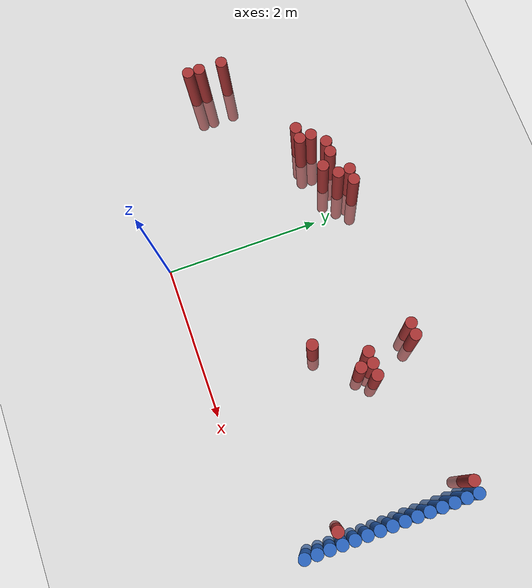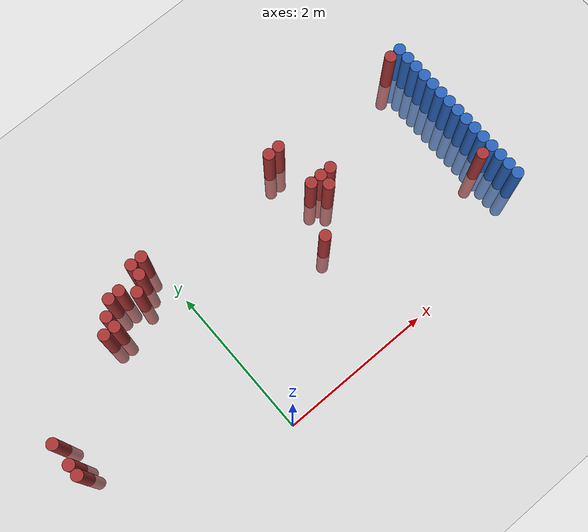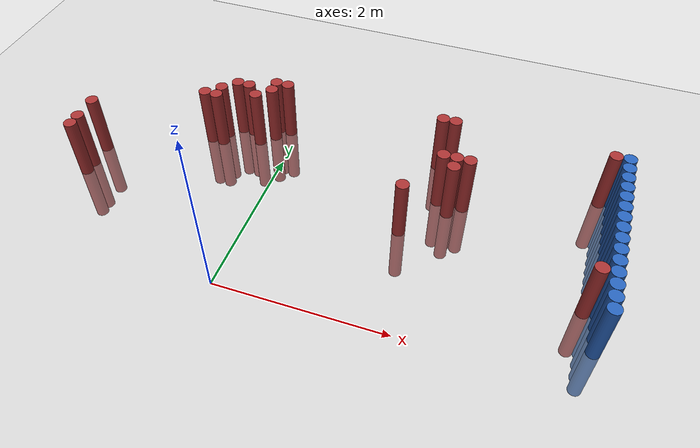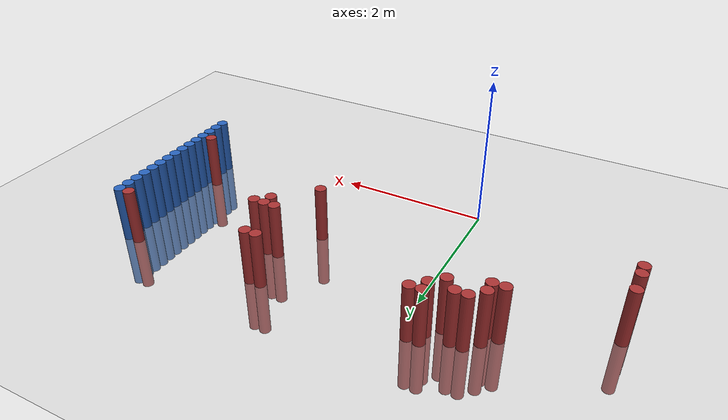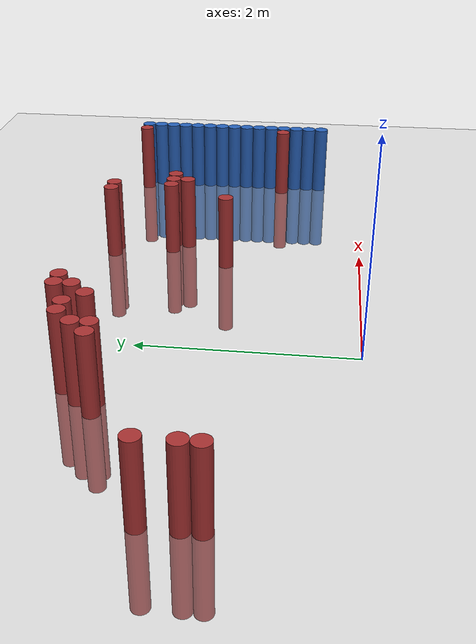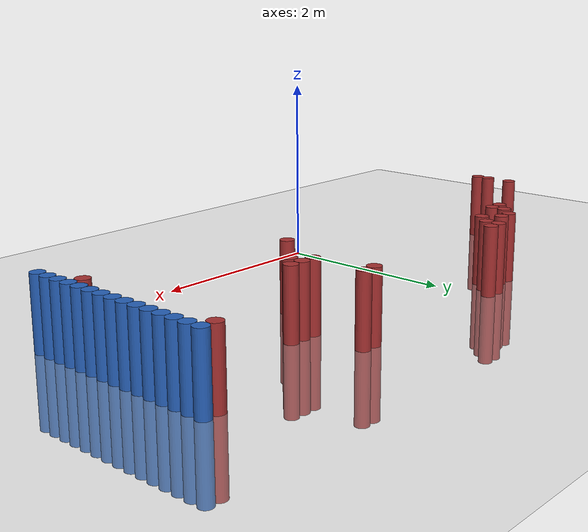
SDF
<sdf version="1.6">
 <world name="default">
  <model name="ground_plane">
   <static>1</static>
   <link name="link">
    <collision name="collision">
     <geometry><plane><normal>0 0 1</normal><size>100 100</size></plane></geometry>
     <surface><friction><ode><mu>100</mu><mu2>50</mu2></ode></friction></surface>
    </collision>
    <visual name="visual">
     <cast_shadows>0</cast_shadows>
     <geometry><plane><normal>0 0 1</normal><size>100 100</size></plane></geometry>
     <material>
      <script><uri>file://media/materials/scripts/gazebo.material</uri><name>Gazebo/Grey</name></script>
     </material>
    </visual>
   </link>
  </model>
  <model name="unit_cylinder_122">
   <static>1</static>
   <pose>3.925000 0.625000 0.000000 0.000000 0.000000 0.000000</pose>
   <link name="link">
    <inertial>
     <mass>1</mass>
     <inertia><ixx>0.145833</ixx><ixy>0</ixy><ixz>0</ixz><iyy>0.145833</iyy><iyz>0</iyz><izz>0.125</izz></inertia>
    </inertial>
    <collision name="collision">
     <geometry><cylinder><radius>0.075000</radius><length>1.5</length></cylinder></geometry>
    </collision>
    <visual name="visual">
     <geometry><cylinder><radius>0.075000</radius><length>1.5</length></cylinder></geometry>
     <material>
      <ambient>0.152000 0.379000 0.720000 1</ambient>
      <diffuse>0.152000 0.379000 0.720000 1</diffuse>
     </material>
     <material>
      <script><name>Gazebo/Grey</name><uri>file://media/materials/scripts/gazebo.material</uri></script>
     </material>
    </visual>
   </link>
  </model>
  <model name="unit_cylinder_124">
   <static>1</static>
   <pose>3.925000 0.775000 0.000000 0.000000 0.000000 0.000000</pose>
   <link name="link">
    <inertial>
     <mass>1</mass>
     <inertia><ixx>0.145833</ixx><ixy>0</ixy><ixz>0</ixz><iyy>0.145833</iyy><iyz>0</iyz><izz>0.125</izz></inertia>
    </inertial>
    <collision name="collision">
     <geometry><cylinder><radius>0.075000</radius><length>1.5</length></cylinder></geometry>
    </collision>
    <visual name="visual">
     <geometry><cylinder><radius>0.075000</radius><length>1.5</length></cylinder></geometry>
     <material>
      <ambient>0.152000 0.379000 0.720000 1</ambient>
      <diffuse>0.152000 0.379000 0.720000 1</diffuse>
     </material>
     <material>
      <script><name>Gazebo/Grey</name><uri>file://media/materials/scripts/gazebo.material</uri></script>
     </material>
    </visual>
   </link>
  </model>
  <model name="unit_cylinder_126">
   <static>1</static>
   <pose>3.925000 0.925000 0.000000 0.000000 0.000000 0.000000</pose>
   <link name="link">
    <inertial>
     <mass>1</mass>
     <inertia><ixx>0.145833</ixx><ixy>0</ixy><ixz>0</ixz><iyy>0.145833</iyy><iyz>0</iyz><izz>0.125</izz></inertia>
    </inertial>
    <collision name="collision">
     <geometry><cylinder><radius>0.075000</radius><length>1.5</length></cylinder></geometry>
    </collision>
    <visual name="visual">
     <geometry><cylinder><radius>0.075000</radius><length>1.5</length></cylinder></geometry>
     <material>
      <ambient>0.152000 0.379000 0.720000 1</ambient>
      <diffuse>0.152000 0.379000 0.720000 1</diffuse>
     </material>
     <material>
      <script><name>Gazebo/Grey</name><uri>file://media/materials/scripts/gazebo.material</uri></script>
     </material>
    </visual>
   </link>
  </model>
  <model name="unit_cylinder_128">
   <static>1</static>
   <pose>3.925000 1.075000 0.000000 0.000000 0.000000 0.000000</pose>
   <link name="link">
    <inertial>
     <mass>1</mass>
     <inertia><ixx>0.145833</ixx><ixy>0</ixy><ixz>0</ixz><iyy>0.145833</iyy><iyz>0</iyz><izz>0.125</izz></inertia>
    </inertial>
    <collision name="collision">
     <geometry><cylinder><radius>0.075000</radius><length>1.5</length></cylinder></geometry>
    </collision>
    <visual name="visual">
     <geometry><cylinder><radius>0.075000</radius><length>1.5</length></cylinder></geometry>
     <material>
      <ambient>0.152000 0.379000 0.720000 1</ambient>
      <diffuse>0.152000 0.379000 0.720000 1</diffuse>
     </material>
     <material>
      <script><name>Gazebo/Grey</name><uri>file://media/materials/scripts/gazebo.material</uri></script>
     </material>
    </visual>
   </link>
  </model>
  <model name="unit_cylinder_130">
   <static>1</static>
   <pose>3.925000 1.225000 0.000000 0.000000 0.000000 0.000000</pose>
   <link name="link">
    <inertial>
     <mass>1</mass>
     <inertia><ixx>0.145833</ixx><ixy>0</ixy><ixz>0</ixz><iyy>0.145833</iyy><iyz>0</iyz><izz>0.125</izz></inertia>
    </inertial>
    <collision name="collision">
     <geometry><cylinder><radius>0.075000</radius><length>1.5</length></cylinder></geometry>
    </collision>
    <visual name="visual">
     <geometry><cylinder><radius>0.075000</radius><length>1.5</length></cylinder></geometry>
     <material>
      <ambient>0.152000 0.379000 0.720000 1</ambient>
      <diffuse>0.152000 0.379000 0.720000 1</diffuse>
     </material>
     <material>
      <script><name>Gazebo/Grey</name><uri>file://media/materials/scripts/gazebo.material</uri></script>
     </material>
    </visual>
   </link>
  </model>
  <model name="unit_cylinder_132">
   <static>1</static>
   <pose>3.925000 1.375000 0.000000 0.000000 0.000000 0.000000</pose>
   <link name="link">
    <inertial>
     <mass>1</mass>
     <inertia><ixx>0.145833</ixx><ixy>0</ixy><ixz>0</ixz><iyy>0.145833</iyy><iyz>0</iyz><izz>0.125</izz></inertia>
    </inertial>
    <collision name="collision">
     <geometry><cylinder><radius>0.075000</radius><length>1.5</length></cylinder></geometry>
    </collision>
    <visual name="visual">
     <geometry><cylinder><radius>0.075000</radius><length>1.5</length></cylinder></geometry>
     <material>
      <ambient>0.152000 0.379000 0.720000 1</ambient>
      <diffuse>0.152000 0.379000 0.720000 1</diffuse>
     </material>
     <material>
      <script><name>Gazebo/Grey</name><uri>file://media/materials/scripts/gazebo.material</uri></script>
     </material>
    </visual>
   </link>
  </model>
  <model name="unit_cylinder_134">
   <static>1</static>
   <pose>3.925000 1.525000 0.000000 0.000000 0.000000 0.000000</pose>
   <link name="link">
    <inertial>
     <mass>1</mass>
     <inertia><ixx>0.145833</ixx><ixy>0</ixy><ixz>0</ixz><iyy>0.145833</iyy><iyz>0</iyz><izz>0.125</izz></inertia>
    </inertial>
    <collision name="collision">
     <geometry><cylinder><radius>0.075000</radius><length>1.5</length></cylinder></geometry>
    </collision>
    <visual name="visual">
     <geometry><cylinder><radius>0.075000</radius><length>1.5</length></cylinder></geometry>
     <material>
      <ambient>0.152000 0.379000 0.720000 1</ambient>
      <diffuse>0.152000 0.379000 0.720000 1</diffuse>
     </material>
     <material>
      <script><name>Gazebo/Grey</name><uri>file://media/materials/scripts/gazebo.material</uri></script>
     </material>
    </visual>
   </link>
  </model>
  <model name="unit_cylinder_136">
   <static>1</static>
   <pose>3.925000 1.675000 0.000000 0.000000 0.000000 0.000000</pose>
   <link name="link">
    <inertial>
     <mass>1</mass>
     <inertia><ixx>0.145833</ixx><ixy>0</ixy><ixz>0</ixz><iyy>0.145833</iyy><iyz>0</iyz><izz>0.125</izz></inertia>
    </inertial>
    <collision name="collision">
     <geometry><cylinder><radius>0.075000</radius><length>1.5</length></cylinder></geometry>
    </collision>
    <visual name="visual">
     <geometry><cylinder><radius>0.075000</radius><length>1.5</length></cylinder></geometry>
     <material>
      <ambient>0.152000 0.379000 0.720000 1</ambient>
      <diffuse>0.152000 0.379000 0.720000 1</diffuse>
     </material>
     <material>
      <script><name>Gazebo/Grey</name><uri>file://media/materials/scripts/gazebo.material</uri></script>
     </material>
    </visual>
   </link>
  </model>
  <model name="unit_cylinder_138">
   <static>1</static>
   <pose>3.925000 1.825000 0.000000 0.000000 0.000000 0.000000</pose>
   <link name="link">
    <inertial>
     <mass>1</mass>
     <inertia><ixx>0.145833</ixx><ixy>0</ixy><ixz>0</ixz><iyy>0.145833</iyy><iyz>0</iyz><izz>0.125</izz></inertia>
    </inertial>
    <collision name="collision">
     <geometry><cylinder><radius>0.075000</radius><length>1.5</length></cylinder></geometry>
    </collision>
    <visual name="visual">
     <geometry><cylinder><radius>0.075000</radius><length>1.5</length></cylinder></geometry>
     <material>
      <ambient>0.152000 0.379000 0.720000 1</ambient>
      <diffuse>0.152000 0.379000 0.720000 1</diffuse>
     </material>
     <material>
      <script><name>Gazebo/Grey</name><uri>file://media/materials/scripts/gazebo.material</uri></script>
     </material>
    </visual>
   </link>
  </model>
  <model name="unit_cylinder_140">
   <static>1</static>
   <pose>3.925000 1.975000 0.000000 0.000000 0.000000 0.000000</pose>
   <link name="link">
    <inertial>
     <mass>1</mass>
     <inertia><ixx>0.145833</ixx><ixy>0</ixy><ixz>0</ixz><iyy>0.145833</iyy><iyz>0</iyz><izz>0.125</izz></inertia>
    </inertial>
    <collision name="collision">
     <geometry><cylinder><radius>0.075000</radius><length>1.5</length></cylinder></geometry>
    </collision>
    <visual name="visual">
     <geometry><cylinder><radius>0.075000</radius><length>1.5</length></cylinder></geometry>
     <material>
      <ambient>0.152000 0.379000 0.720000 1</ambient>
      <diffuse>0.152000 0.379000 0.720000 1</diffuse>
     </material>
     <material>
      <script><name>Gazebo/Grey</name><uri>file://media/materials/scripts/gazebo.material</uri></script>
     </material>
    </visual>
   </link>
  </model>
  <model name="unit_cylinder_142">
   <static>1</static>
   <pose>3.925000 2.125000 0.000000 0.000000 0.000000 0.000000</pose>
   <link name="link">
    <inertial>
     <mass>1</mass>
     <inertia><ixx>0.145833</ixx><ixy>0</ixy><ixz>0</ixz><iyy>0.145833</iyy><iyz>0</iyz><izz>0.125</izz></inertia>
    </inertial>
    <collision name="collision">
     <geometry><cylinder><radius>0.075000</radius><length>1.5</length></cylinder></geometry>
    </collision>
    <visual name="visual">
     <geometry><cylinder><radius>0.075000</radius><length>1.5</length></cylinder></geometry>
     <material>
      <ambient>0.152000 0.379000 0.720000 1</ambient>
      <diffuse>0.152000 0.379000 0.720000 1</diffuse>
     </material>
     <material>
      <script><name>Gazebo/Grey</name><uri>file://media/materials/scripts/gazebo.material</uri></script>
     </material>
    </visual>
   </link>
  </model>
  <model name="unit_cylinder_144">
   <static>1</static>
   <pose>3.925000 2.275000 0.000000 0.000000 0.000000 0.000000</pose>
   <link name="link">
    <inertial>
     <mass>1</mass>
     <inertia><ixx>0.145833</ixx><ixy>0</ixy><ixz>0</ixz><iyy>0.145833</iyy><iyz>0</iyz><izz>0.125</izz></inertia>
    </inertial>
    <collision name="collision">
     <geometry><cylinder><radius>0.075000</radius><length>1.5</length></cylinder></geometry>
    </collision>
    <visual name="visual">
     <geometry><cylinder><radius>0.075000</radius><length>1.5</length></cylinder></geometry>
     <material>
      <ambient>0.152000 0.379000 0.720000 1</ambient>
      <diffuse>0.152000 0.379000 0.720000 1</diffuse>
     </material>
     <material>
      <script><name>Gazebo/Grey</name><uri>file://media/materials/scripts/gazebo.material</uri></script>
     </material>
    </visual>
   </link>
  </model>
  <model name="unit_cylinder_146">
   <static>1</static>
   <pose>3.925000 2.425000 0.000000 0.000000 0.000000 0.000000</pose>
   <link name="link">
    <inertial>
     <mass>1</mass>
     <inertia><ixx>0.145833</ixx><ixy>0</ixy><ixz>0</ixz><iyy>0.145833</iyy><iyz>0</iyz><izz>0.125</izz></inertia>
    </inertial>
    <collision name="collision">
     <geometry><cylinder><radius>0.075000</radius><length>1.5</length></cylinder></geometry>
    </collision>
    <visual name="visual">
     <geometry><cylinder><radius>0.075000</radius><length>1.5</length></cylinder></geometry>
     <material>
      <ambient>0.152000 0.379000 0.720000 1</ambient>
      <diffuse>0.152000 0.379000 0.720000 1</diffuse>
     </material>
     <material>
      <script><name>Gazebo/Grey</name><uri>file://media/materials/scripts/gazebo.material</uri></script>
     </material>
    </visual>
   </link>
  </model>
  <model name="unit_cylinder_148">
   <static>1</static>
   <pose>3.925000 2.575000 0.000000 0.000000 0.000000 0.000000</pose>
   <link name="link">
    <inertial>
     <mass>1</mass>
     <inertia><ixx>0.145833</ixx><ixy>0</ixy><ixz>0</ixz><iyy>0.145833</iyy><iyz>0</iyz><izz>0.125</izz></inertia>
    </inertial>
    <collision name="collision">
     <geometry><cylinder><radius>0.075000</radius><length>1.5</length></cylinder></geometry>
    </collision>
    <visual name="visual">
     <geometry><cylinder><radius>0.075000</radius><length>1.5</length></cylinder></geometry>
     <material>
      <ambient>0.152000 0.379000 0.720000 1</ambient>
      <diffuse>0.152000 0.379000 0.720000 1</diffuse>
     </material>
     <material>
      <script><name>Gazebo/Grey</name><uri>file://media/materials/scripts/gazebo.material</uri></script>
     </material>
    </visual>
   </link>
  </model>
  <model name="unit_cylinder_295">
   <static>1</static>
   <pose>-2.225000 1.075000 0.000000 0.000000 0.000000 0.000000</pose>
   <link name="link">
    <inertial>
     <mass>1</mass>
     <inertia><ixx>0.145833</ixx><ixy>0</ixy><ixz>0</ixz><iyy>0.145833</iyy><iyz>0</iyz><izz>0.125</izz></inertia>
    </inertial>
    <collision name="collision">
     <geometry><cylinder><radius>0.075000</radius><length>1.5</length></cylinder></geometry>
    </collision>
    <visual name="visual">
     <geometry><cylinder><radius>0.075000</radius><length>1.5</length></cylinder></geometry>
     <material>
      <ambient>0.648000 0.192000 0.192000 1</ambient>
      <diffuse>0.648000 0.192000 0.192000 1</diffuse>
     </material>
     <material>
      <script><name>Gazebo/Grey</name><uri>file://media/materials/scripts/gazebo.material</uri></script>
     </material>
    </visual>
   </link>
  </model>
  <model name="unit_cylinder_296">
   <static>1</static>
   <pose>-2.225000 1.225000 0.000000 0.000000 0.000000 0.000000</pose>
   <link name="link">
    <inertial>
     <mass>1</mass>
     <inertia><ixx>0.145833</ixx><ixy>0</ixy><ixz>0</ixz><iyy>0.145833</iyy><iyz>0</iyz><izz>0.125</izz></inertia>
    </inertial>
    <collision name="collision">
     <geometry><cylinder><radius>0.075000</radius><length>1.5</length></cylinder></geometry>
    </collision>
    <visual name="visual">
     <geometry><cylinder><radius>0.075000</radius><length>1.5</length></cylinder></geometry>
     <material>
      <ambient>0.648000 0.192000 0.192000 1</ambient>
      <diffuse>0.648000 0.192000 0.192000 1</diffuse>
     </material>
     <material>
      <script><name>Gazebo/Grey</name><uri>file://media/materials/scripts/gazebo.material</uri></script>
     </material>
    </visual>
   </link>
  </model>
  <model name="unit_cylinder_297">
   <static>1</static>
   <pose>-2.225000 1.525000 0.000000 0.000000 0.000000 0.000000</pose>
   <link name="link">
    <inertial>
     <mass>1</mass>
     <inertia><ixx>0.145833</ixx><ixy>0</ixy><ixz>0</ixz><iyy>0.145833</iyy><iyz>0</iyz><izz>0.125</izz></inertia>
    </inertial>
    <collision name="collision">
     <geometry><cylinder><radius>0.075000</radius><length>1.5</length></cylinder></geometry>
    </collision>
    <visual name="visual">
     <geometry><cylinder><radius>0.075000</radius><length>1.5</length></cylinder></geometry>
     <material>
      <ambient>0.648000 0.192000 0.192000 1</ambient>
      <diffuse>0.648000 0.192000 0.192000 1</diffuse>
     </material>
     <material>
      <script><name>Gazebo/Grey</name><uri>file://media/materials/scripts/gazebo.material</uri></script>
     </material>
    </visual>
   </link>
  </model>
  <model name="unit_cylinder_316">
   <static>1</static>
   <pose>-1.025000 2.125000 0.000000 0.000000 0.000000 0.000000</pose>
   <link name="link">
    <inertial>
     <mass>1</mass>
     <inertia><ixx>0.145833</ixx><ixy>0</ixy><ixz>0</ixz><iyy>0.145833</iyy><iyz>0</iyz><izz>0.125</izz></inertia>
    </inertial>
    <collision name="collision">
     <geometry><cylinder><radius>0.075000</radius><length>1.5</length></cylinder></geometry>
    </collision>
    <visual name="visual">
     <geometry><cylinder><radius>0.075000</radius><length>1.5</length></cylinder></geometry>
     <material>
      <ambient>0.648000 0.192000 0.192000 1</ambient>
      <diffuse>0.648000 0.192000 0.192000 1</diffuse>
     </material>
     <material>
      <script><name>Gazebo/Grey</name><uri>file://media/materials/scripts/gazebo.material</uri></script>
     </material>
    </visual>
   </link>
  </model>
  <model name="unit_cylinder_321">
   <static>1</static>
   <pose>-0.875000 2.125000 0.000000 0.000000 0.000000 0.000000</pose>
   <link name="link">
    <inertial>
     <mass>1</mass>
     <inertia><ixx>0.145833</ixx><ixy>0</ixy><ixz>0</ixz><iyy>0.145833</iyy><iyz>0</iyz><izz>0.125</izz></inertia>
    </inertial>
    <collision name="collision">
     <geometry><cylinder><radius>0.075000</radius><length>1.5</length></cylinder></geometry>
    </collision>
    <visual name="visual">
     <geometry><cylinder><radius>0.075000</radius><length>1.5</length></cylinder></geometry>
     <material>
      <ambient>0.648000 0.192000 0.192000 1</ambient>
      <diffuse>0.648000 0.192000 0.192000 1</diffuse>
     </material>
     <material>
      <script><name>Gazebo/Grey</name><uri>file://media/materials/scripts/gazebo.material</uri></script>
     </material>
    </visual>
   </link>
  </model>
  <model name="unit_cylinder_322">
   <static>1</static>
   <pose>-0.875000 2.275000 0.000000 0.000000 0.000000 0.000000</pose>
   <link name="link">
    <inertial>
     <mass>1</mass>
     <inertia><ixx>0.145833</ixx><ixy>0</ixy><ixz>0</ixz><iyy>0.145833</iyy><iyz>0</iyz><izz>0.125</izz></inertia>
    </inertial>
    <collision name="collision">
     <geometry><cylinder><radius>0.075000</radius><length>1.5</length></cylinder></geometry>
    </collision>
    <visual name="visual">
     <geometry><cylinder><radius>0.075000</radius><length>1.5</length></cylinder></geometry>
     <material>
      <ambient>0.648000 0.192000 0.192000 1</ambient>
      <diffuse>0.648000 0.192000 0.192000 1</diffuse>
     </material>
     <material>
      <script><name>Gazebo/Grey</name><uri>file://media/materials/scripts/gazebo.material</uri></script>
     </material>
    </visual>
   </link>
  </model>
  <model name="unit_cylinder_326">
   <static>1</static>
   <pose>-0.725000 2.425000 0.000000 0.000000 0.000000 0.000000</pose>
   <link name="link">
    <inertial>
     <mass>1</mass>
     <inertia><ixx>0.145833</ixx><ixy>0</ixy><ixz>0</ixz><iyy>0.145833</iyy><iyz>0</iyz><izz>0.125</izz></inertia>
    </inertial>
    <collision name="collision">
     <geometry><cylinder><radius>0.075000</radius><length>1.5</length></cylinder></geometry>
    </collision>
    <visual name="visual">
     <geometry><cylinder><radius>0.075000</radius><length>1.5</length></cylinder></geometry>
     <material>
      <ambient>0.648000 0.192000 0.192000 1</ambient>
      <diffuse>0.648000 0.192000 0.192000 1</diffuse>
     </material>
     <material>
      <script><name>Gazebo/Grey</name><uri>file://media/materials/scripts/gazebo.material</uri></script>
     </material>
    </visual>
   </link>
  </model>
  <model name="unit_cylinder_327">
   <static>1</static>
   <pose>-0.575000 2.425000 0.000000 0.000000 0.000000 0.000000</pose>
   <link name="link">
    <inertial>
     <mass>1</mass>
     <inertia><ixx>0.145833</ixx><ixy>0</ixy><ixz>0</ixz><iyy>0.145833</iyy><iyz>0</iyz><izz>0.125</izz></inertia>
    </inertial>
    <collision name="collision">
     <geometry><cylinder><radius>0.075000</radius><length>1.5</length></cylinder></geometry>
    </collision>
    <visual name="visual">
     <geometry><cylinder><radius>0.075000</radius><length>1.5</length></cylinder></geometry>
     <material>
      <ambient>0.648000 0.192000 0.192000 1</ambient>
      <diffuse>0.648000 0.192000 0.192000 1</diffuse>
     </material>
     <material>
      <script><name>Gazebo/Grey</name><uri>file://media/materials/scripts/gazebo.material</uri></script>
     </material>
    </visual>
   </link>
  </model>
  <model name="unit_cylinder_328">
   <static>1</static>
   <pose>-0.425000 2.275000 0.000000 0.000000 0.000000 0.000000</pose>
   <link name="link">
    <inertial>
     <mass>1</mass>
     <inertia><ixx>0.145833</ixx><ixy>0</ixy><ixz>0</ixz><iyy>0.145833</iyy><iyz>0</iyz><izz>0.125</izz></inertia>
    </inertial>
    <collision name="collision">
     <geometry><cylinder><radius>0.075000</radius><length>1.5</length></cylinder></geometry>
    </collision>
    <visual name="visual">
     <geometry><cylinder><radius>0.075000</radius><length>1.5</length></cylinder></geometry>
     <material>
      <ambient>0.648000 0.192000 0.192000 1</ambient>
      <diffuse>0.648000 0.192000 0.192000 1</diffuse>
     </material>
     <material>
      <script><name>Gazebo/Grey</name><uri>file://media/materials/scripts/gazebo.material</uri></script>
     </material>
    </visual>
   </link>
  </model>
  <model name="unit_cylinder_329">
   <static>1</static>
   <pose>-0.275000 2.425000 0.000000 0.000000 0.000000 0.000000</pose>
   <link name="link">
    <inertial>
     <mass>1</mass>
     <inertia><ixx>0.145833</ixx><ixy>0</ixy><ixz>0</ixz><iyy>0.145833</iyy><iyz>0</iyz><izz>0.125</izz></inertia>
    </inertial>
    <collision name="collision">
     <geometry><cylinder><radius>0.075000</radius><length>1.5</length></cylinder></geometry>
    </collision>
    <visual name="visual">
     <geometry><cylinder><radius>0.075000</radius><length>1.5</length></cylinder></geometry>
     <material>
      <ambient>0.648000 0.192000 0.192000 1</ambient>
      <diffuse>0.648000 0.192000 0.192000 1</diffuse>
     </material>
     <material>
      <script><name>Gazebo/Grey</name><uri>file://media/materials/scripts/gazebo.material</uri></script>
     </material>
    </visual>
   </link>
  </model>
  <model name="unit_cylinder_330">
   <static>1</static>
   <pose>-0.275000 2.575000 0.000000 0.000000 0.000000 0.000000</pose>
   <link name="link">
    <inertial>
     <mass>1</mass>
     <inertia><ixx>0.145833</ixx><ixy>0</ixy><ixz>0</ixz><iyy>0.145833</iyy><iyz>0</iyz><izz>0.125</izz></inertia>
    </inertial>
    <collision name="collision">
     <geometry><cylinder><radius>0.075000</radius><length>1.5</length></cylinder></geometry>
    </collision>
    <visual name="visual">
     <geometry><cylinder><radius>0.075000</radius><length>1.5</length></cylinder></geometry>
     <material>
      <ambient>0.648000 0.192000 0.192000 1</ambient>
      <diffuse>0.648000 0.192000 0.192000 1</diffuse>
     </material>
     <material>
      <script><name>Gazebo/Grey</name><uri>file://media/materials/scripts/gazebo.material</uri></script>
     </material>
    </visual>
   </link>
  </model>
  <model name="unit_cylinder_333">
   <static>1</static>
   <pose>-0.125000 2.575000 0.000000 0.000000 0.000000 0.000000</pose>
   <link name="link">
    <inertial>
     <mass>1</mass>
     <inertia><ixx>0.145833</ixx><ixy>0</ixy><ixz>0</ixz><iyy>0.145833</iyy><iyz>0</iyz><izz>0.125</izz></inertia>
    </inertial>
    <collision name="collision">
     <geometry><cylinder><radius>0.075000</radius><length>1.5</length></cylinder></geometry>
    </collision>
    <visual name="visual">
     <geometry><cylinder><radius>0.075000</radius><length>1.5</length></cylinder></geometry>
     <material>
      <ambient>0.648000 0.192000 0.192000 1</ambient>
      <diffuse>0.648000 0.192000 0.192000 1</diffuse>
     </material>
     <material>
      <script><name>Gazebo/Grey</name><uri>file://media/materials/scripts/gazebo.material</uri></script>
     </material>
    </visual>
   </link>
  </model>
  <model name="unit_cylinder_359">
   <static>1</static>
   <pose>1.675000 1.375000 0.000000 0.000000 0.000000 0.000000</pose>
   <link name="link">
    <inertial>
     <mass>1</mass>
     <inertia><ixx>0.145833</ixx><ixy>0</ixy><ixz>0</ixz><iyy>0.145833</iyy><iyz>0</iyz><izz>0.125</izz></inertia>
    </inertial>
    <collision name="collision">
     <geometry><cylinder><radius>0.075000</radius><length>1.5</length></cylinder></geometry>
    </collision>
    <visual name="visual">
     <geometry><cylinder><radius>0.075000</radius><length>1.5</length></cylinder></geometry>
     <material>
      <ambient>0.648000 0.192000 0.192000 1</ambient>
      <diffuse>0.648000 0.192000 0.192000 1</diffuse>
     </material>
     <material>
      <script><name>Gazebo/Grey</name><uri>file://media/materials/scripts/gazebo.material</uri></script>
     </material>
    </visual>
   </link>
  </model>
  <model name="unit_cylinder_361">
   <static>1</static>
   <pose>1.825000 2.575000 0.000000 0.000000 0.000000 0.000000</pose>
   <link name="link">
    <inertial>
     <mass>1</mass>
     <inertia><ixx>0.145833</ixx><ixy>0</ixy><ixz>0</ixz><iyy>0.145833</iyy><iyz>0</iyz><izz>0.125</izz></inertia>
    </inertial>
    <collision name="collision">
     <geometry><cylinder><radius>0.075000</radius><length>1.5</length></cylinder></geometry>
    </collision>
    <visual name="visual">
     <geometry><cylinder><radius>0.075000</radius><length>1.5</length></cylinder></geometry>
     <material>
      <ambient>0.648000 0.192000 0.192000 1</ambient>
      <diffuse>0.648000 0.192000 0.192000 1</diffuse>
     </material>
     <material>
      <script><name>Gazebo/Grey</name><uri>file://media/materials/scripts/gazebo.material</uri></script>
     </material>
    </visual>
   </link>
  </model>
  <model name="unit_cylinder_363">
   <static>1</static>
   <pose>1.975000 1.975000 0.000000 0.000000 0.000000 0.000000</pose>
   <link name="link">
    <inertial>
     <mass>1</mass>
     <inertia><ixx>0.145833</ixx><ixy>0</ixy><ixz>0</ixz><iyy>0.145833</iyy><iyz>0</iyz><izz>0.125</izz></inertia>
    </inertial>
    <collision name="collision">
     <geometry><cylinder><radius>0.075000</radius><length>1.5</length></cylinder></geometry>
    </collision>
    <visual name="visual">
     <geometry><cylinder><radius>0.075000</radius><length>1.5</length></cylinder></geometry>
     <material>
      <ambient>0.648000 0.192000 0.192000 1</ambient>
      <diffuse>0.648000 0.192000 0.192000 1</diffuse>
     </material>
     <material>
      <script><name>Gazebo/Grey</name><uri>file://media/materials/scripts/gazebo.material</uri></script>
     </material>
    </visual>
   </link>
  </model>
  <model name="unit_cylinder_364">
   <static>1</static>
   <pose>1.975000 2.575000 0.000000 0.000000 0.000000 0.000000</pose>
   <link name="link">
    <inertial>
     <mass>1</mass>
     <inertia><ixx>0.145833</ixx><ixy>0</ixy><ixz>0</ixz><iyy>0.145833</iyy><iyz>0</iyz><izz>0.125</izz></inertia>
    </inertial>
    <collision name="collision">
     <geometry><cylinder><radius>0.075000</radius><length>1.5</length></cylinder></geometry>
    </collision>
    <visual name="visual">
     <geometry><cylinder><radius>0.075000</radius><length>1.5</length></cylinder></geometry>
     <material>
      <ambient>0.648000 0.192000 0.192000 1</ambient>
      <diffuse>0.648000 0.192000 0.192000 1</diffuse>
     </material>
     <material>
      <script><name>Gazebo/Grey</name><uri>file://media/materials/scripts/gazebo.material</uri></script>
     </material>
    </visual>
   </link>
  </model>
  <model name="unit_cylinder_366">
   <static>1</static>
   <pose>2.125000 1.825000 0.000000 0.000000 0.000000 0.000000</pose>
   <link name="link">
    <inertial>
     <mass>1</mass>
     <inertia><ixx>0.145833</ixx><ixy>0</ixy><ixz>0</ixz><iyy>0.145833</iyy><iyz>0</iyz><izz>0.125</izz></inertia>
    </inertial>
    <collision name="collision">
     <geometry><cylinder><radius>0.075000</radius><length>1.5</length></cylinder></geometry>
    </collision>
    <visual name="visual">
     <geometry><cylinder><radius>0.075000</radius><length>1.5</length></cylinder></geometry>
     <material>
      <ambient>0.648000 0.192000 0.192000 1</ambient>
      <diffuse>0.648000 0.192000 0.192000 1</diffuse>
     </material>
     <material>
      <script><name>Gazebo/Grey</name><uri>file://media/materials/scripts/gazebo.material</uri></script>
     </material>
    </visual>
   </link>
  </model>
  <model name="unit_cylinder_367">
   <static>1</static>
   <pose>2.125000 1.975000 0.000000 0.000000 0.000000 0.000000</pose>
   <link name="link">
    <inertial>
     <mass>1</mass>
     <inertia><ixx>0.145833</ixx><ixy>0</ixy><ixz>0</ixz><iyy>0.145833</iyy><iyz>0</iyz><izz>0.125</izz></inertia>
    </inertial>
    <collision name="collision">
     <geometry><cylinder><radius>0.075000</radius><length>1.5</length></cylinder></geometry>
    </collision>
    <visual name="visual">
     <geometry><cylinder><radius>0.075000</radius><length>1.5</length></cylinder></geometry>
     <material>
      <ambient>0.648000 0.192000 0.192000 1</ambient>
      <diffuse>0.648000 0.192000 0.192000 1</diffuse>
     </material>
     <material>
      <script><name>Gazebo/Grey</name><uri>file://media/materials/scripts/gazebo.material</uri></script>
     </material>
    </visual>
   </link>
  </model>
  <model name="unit_cylinder_368">
   <static>1</static>
   <pose>2.275000 1.975000 0.000000 0.000000 0.000000 0.000000</pose>
   <link name="link">
    <inertial>
     <mass>1</mass>
     <inertia><ixx>0.145833</ixx><ixy>0</ixy><ixz>0</ixz><iyy>0.145833</iyy><iyz>0</iyz><izz>0.125</izz></inertia>
    </inertial>
    <collision name="collision">
     <geometry><cylinder><radius>0.075000</radius><length>1.5</length></cylinder></geometry>
    </collision>
    <visual name="visual">
     <geometry><cylinder><radius>0.075000</radius><length>1.5</length></cylinder></geometry>
     <material>
      <ambient>0.648000 0.192000 0.192000 1</ambient>
      <diffuse>0.648000 0.192000 0.192000 1</diffuse>
     </material>
     <material>
      <script><name>Gazebo/Grey</name><uri>file://media/materials/scripts/gazebo.material</uri></script>
     </material>
    </visual>
   </link>
  </model>
  <model name="unit_cylinder_391">
   <static>1</static>
   <pose>3.775000 0.925000 0.000000 0.000000 0.000000 0.000000</pose>
   <link name="link">
    <inertial>
     <mass>1</mass>
     <inertia><ixx>0.145833</ixx><ixy>0</ixy><ixz>0</ixz><iyy>0.145833</iyy><iyz>0</iyz><izz>0.125</izz></inertia>
    </inertial>
    <collision name="collision">
     <geometry><cylinder><radius>0.075000</radius><length>1.5</length></cylinder></geometry>
    </collision>
    <visual name="visual">
     <geometry><cylinder><radius>0.075000</radius><length>1.5</length></cylinder></geometry>
     <material>
      <ambient>0.648000 0.192000 0.192000 1</ambient>
      <diffuse>0.648000 0.192000 0.192000 1</diffuse>
     </material>
     <material>
      <script><name>Gazebo/Grey</name><uri>file://media/materials/scripts/gazebo.material</uri></script>
     </material>
    </visual>
   </link>
  </model>
  <model name="unit_cylinder_392">
   <static>1</static>
   <pose>3.775000 2.575000 0.000000 0.000000 0.000000 0.000000</pose>
   <link name="link">
    <inertial>
     <mass>1</mass>
     <inertia><ixx>0.145833</ixx><ixy>0</ixy><ixz>0</ixz><iyy>0.145833</iyy><iyz>0</iyz><izz>0.125</izz></inertia>
    </inertial>
    <collision name="collision">
     <geometry><cylinder><radius>0.075000</radius><length>1.5</length></cylinder></geometry>
    </collision>
    <visual name="visual">
     <geometry><cylinder><radius>0.075000</radius><length>1.5</length></cylinder></geometry>
     <material>
      <ambient>0.648000 0.192000 0.192000 1</ambient>
      <diffuse>0.648000 0.192000 0.192000 1</diffuse>
     </material>
     <material>
      <script><name>Gazebo/Grey</name><uri>file://media/materials/scripts/gazebo.material</uri></script>
     </material>
    </visual>
   </link>
  </model>
  <model name="unit_cylinder_416">
   <static>1</static>
   <pose>3.925000 0.475000 0.000000 0.000000 0.000000 0.000000</pose>
   <link name="link">
    <inertial>
     <mass>1</mass>
     <inertia><ixx>0.145833</ixx><ixy>0</ixy><ixz>0</ixz><iyy>0.145833</iyy><iyz>0</iyz><izz>0.125</izz></inertia>
    </inertial>
    <collision name="collision">
     <geometry><cylinder><radius>0.075000</radius><length>1.5</length></cylinder></geometry>
    </collision>
    <visual name="visual">
     <geometry><cylinder><radius>0.075000</radius><length>1.5</length></cylinder></geometry>
     <material>
      <ambient>0.152000 0.379000 0.720000 1</ambient>
      <diffuse>0.152000 0.379000 0.720000 1</diffuse>
     </material>
     <material>
      <script><name>Gazebo/Grey</name><uri>file://media/materials/scripts/gazebo.material</uri></script>
     </material>
    </visual>
   </link>
  </model>
  <model name="unit_cylinder_417">
   <static>1</static>
   <pose>3.925000 0.625000 0.000000 0.000000 0.000000 0.000000</pose>
   <link name="link">
    <inertial>
     <mass>1</mass>
     <inertia><ixx>0.145833</ixx><ixy>0</ixy><ixz>0</ixz><iyy>0.145833</iyy><iyz>0</iyz><izz>0.125</izz></inertia>
    </inertial>
    <collision name="collision">
     <geometry><cylinder><radius>0.075000</radius><length>1.5</length></cylinder></geometry>
    </collision>
    <visual name="visual">
     <geometry><cylinder><radius>0.075000</radius><length>1.5</length></cylinder></geometry>
     <material>
      <ambient>0.152000 0.379000 0.720000 1</ambient>
      <diffuse>0.152000 0.379000 0.720000 1</diffuse>
     </material>
     <material>
      <script><name>Gazebo/Grey</name><uri>file://media/materials/scripts/gazebo.material</uri></script>
     </material>
    </visual>
   </link>
  </model>
  <model name="unit_cylinder_418">
   <static>1</static>
   <pose>3.925000 0.775000 0.000000 0.000000 0.000000 0.000000</pose>
   <link name="link">
    <inertial>
     <mass>1</mass>
     <inertia><ixx>0.145833</ixx><ixy>0</ixy><ixz>0</ixz><iyy>0.145833</iyy><iyz>0</iyz><izz>0.125</izz></inertia>
    </inertial>
    <collision name="collision">
     <geometry><cylinder><radius>0.075000</radius><length>1.5</length></cylinder></geometry>
    </collision>
    <visual name="visual">
     <geometry><cylinder><radius>0.075000</radius><length>1.5</length></cylinder></geometry>
     <material>
      <ambient>0.152000 0.379000 0.720000 1</ambient>
      <diffuse>0.152000 0.379000 0.720000 1</diffuse>
     </material>
     <material>
      <script><name>Gazebo/Grey</name><uri>file://media/materials/scripts/gazebo.material</uri></script>
     </material>
    </visual>
   </link>
  </model>
  <model name="unit_cylinder_419">
   <static>1</static>
   <pose>3.925000 0.925000 0.000000 0.000000 0.000000 0.000000</pose>
   <link name="link">
    <inertial>
     <mass>1</mass>
     <inertia><ixx>0.145833</ixx><ixy>0</ixy><ixz>0</ixz><iyy>0.145833</iyy><iyz>0</iyz><izz>0.125</izz></inertia>
    </inertial>
    <collision name="collision">
     <geometry><cylinder><radius>0.075000</radius><length>1.5</length></cylinder></geometry>
    </collision>
    <visual name="visual">
     <geometry><cylinder><radius>0.075000</radius><length>1.5</length></cylinder></geometry>
     <material>
      <ambient>0.152000 0.379000 0.720000 1</ambient>
      <diffuse>0.152000 0.379000 0.720000 1</diffuse>
     </material>
     <material>
      <script><name>Gazebo/Grey</name><uri>file://media/materials/scripts/gazebo.material</uri></script>
     </material>
    </visual>
   </link>
  </model>
  <model name="unit_cylinder_420">
   <static>1</static>
   <pose>3.925000 1.075000 0.000000 0.000000 0.000000 0.000000</pose>
   <link name="link">
    <inertial>
     <mass>1</mass>
     <inertia><ixx>0.145833</ixx><ixy>0</ixy><ixz>0</ixz><iyy>0.145833</iyy><iyz>0</iyz><izz>0.125</izz></inertia>
    </inertial>
    <collision name="collision">
     <geometry><cylinder><radius>0.075000</radius><length>1.5</length></cylinder></geometry>
    </collision>
    <visual name="visual">
     <geometry><cylinder><radius>0.075000</radius><length>1.5</length></cylinder></geometry>
     <material>
      <ambient>0.152000 0.379000 0.720000 1</ambient>
      <diffuse>0.152000 0.379000 0.720000 1</diffuse>
     </material>
     <material>
      <script><name>Gazebo/Grey</name><uri>file://media/materials/scripts/gazebo.material</uri></script>
     </material>
    </visual>
   </link>
  </model>
  <model name="unit_cylinder_421">
   <static>1</static>
   <pose>3.925000 1.225000 0.000000 0.000000 0.000000 0.000000</pose>
   <link name="link">
    <inertial>
     <mass>1</mass>
     <inertia><ixx>0.145833</ixx><ixy>0</ixy><ixz>0</ixz><iyy>0.145833</iyy><iyz>0</iyz><izz>0.125</izz></inertia>
    </inertial>
    <collision name="collision">
     <geometry><cylinder><radius>0.075000</radius><length>1.5</length></cylinder></geometry>
    </collision>
    <visual name="visual">
     <geometry><cylinder><radius>0.075000</radius><length>1.5</length></cylinder></geometry>
     <material>
      <ambient>0.152000 0.379000 0.720000 1</ambient>
      <diffuse>0.152000 0.379000 0.720000 1</diffuse>
     </material>
     <material>
      <script><name>Gazebo/Grey</name><uri>file://media/materials/scripts/gazebo.material</uri></script>
     </material>
    </visual>
   </link>
  </model>
  <model name="unit_cylinder_422">
   <static>1</static>
   <pose>3.925000 1.375000 0.000000 0.000000 0.000000 0.000000</pose>
   <link name="link">
    <inertial>
     <mass>1</mass>
     <inertia><ixx>0.145833</ixx><ixy>0</ixy><ixz>0</ixz><iyy>0.145833</iyy><iyz>0</iyz><izz>0.125</izz></inertia>
    </inertial>
    <collision name="collision">
     <geometry><cylinder><radius>0.075000</radius><length>1.5</length></cylinder></geometry>
    </collision>
    <visual name="visual">
     <geometry><cylinder><radius>0.075000</radius><length>1.5</length></cylinder></geometry>
     <material>
      <ambient>0.152000 0.379000 0.720000 1</ambient>
      <diffuse>0.152000 0.379000 0.720000 1</diffuse>
     </material>
     <material>
      <script><name>Gazebo/Grey</name><uri>file://media/materials/scripts/gazebo.material</uri></script>
     </material>
    </visual>
   </link>
  </model>
  <model name="unit_cylinder_423">
   <static>1</static>
   <pose>3.925000 1.525000 0.000000 0.000000 0.000000 0.000000</pose>
   <link name="link">
    <inertial>
     <mass>1</mass>
     <inertia><ixx>0.145833</ixx><ixy>0</ixy><ixz>0</ixz><iyy>0.145833</iyy><iyz>0</iyz><izz>0.125</izz></inertia>
    </inertial>
    <collision name="collision">
     <geometry><cylinder><radius>0.075000</radius><length>1.5</length></cylinder></geometry>
    </collision>
    <visual name="visual">
     <geometry><cylinder><radius>0.075000</radius><length>1.5</length></cylinder></geometry>
     <material>
      <ambient>0.152000 0.379000 0.720000 1</ambient>
      <diffuse>0.152000 0.379000 0.720000 1</diffuse>
     </material>
     <material>
      <script><name>Gazebo/Grey</name><uri>file://media/materials/scripts/gazebo.material</uri></script>
     </material>
    </visual>
   </link>
  </model>
  <model name="unit_cylinder_424">
   <static>1</static>
   <pose>3.925000 1.675000 0.000000 0.000000 0.000000 0.000000</pose>
   <link name="link">
    <inertial>
     <mass>1</mass>
     <inertia><ixx>0.145833</ixx><ixy>0</ixy><ixz>0</ixz><iyy>0.145833</iyy><iyz>0</iyz><izz>0.125</izz></inertia>
    </inertial>
    <collision name="collision">
     <geometry><cylinder><radius>0.075000</radius><length>1.5</length></cylinder></geometry>
    </collision>
    <visual name="visual">
     <geometry><cylinder><radius>0.075000</radius><length>1.5</length></cylinder></geometry>
     <material>
      <ambient>0.152000 0.379000 0.720000 1</ambient>
      <diffuse>0.152000 0.379000 0.720000 1</diffuse>
     </material>
     <material>
      <script><name>Gazebo/Grey</name><uri>file://media/materials/scripts/gazebo.material</uri></script>
     </material>
    </visual>
   </link>
  </model>
  <model name="unit_cylinder_425">
   <static>1</static>
   <pose>3.925000 1.825000 0.000000 0.000000 0.000000 0.000000</pose>
   <link name="link">
    <inertial>
     <mass>1</mass>
     <inertia><ixx>0.145833</ixx><ixy>0</ixy><ixz>0</ixz><iyy>0.145833</iyy><iyz>0</iyz><izz>0.125</izz></inertia>
    </inertial>
    <collision name="collision">
     <geometry><cylinder><radius>0.075000</radius><length>1.5</length></cylinder></geometry>
    </collision>
    <visual name="visual">
     <geometry><cylinder><radius>0.075000</radius><length>1.5</length></cylinder></geometry>
     <material>
      <ambient>0.152000 0.379000 0.720000 1</ambient>
      <diffuse>0.152000 0.379000 0.720000 1</diffuse>
     </material>
     <material>
      <script><name>Gazebo/Grey</name><uri>file://media/materials/scripts/gazebo.material</uri></script>
     </material>
    </visual>
   </link>
  </model>
  <model name="unit_cylinder_426">
   <static>1</static>
   <pose>3.925000 1.975000 0.000000 0.000000 0.000000 0.000000</pose>
   <link name="link">
    <inertial>
     <mass>1</mass>
     <inertia><ixx>0.145833</ixx><ixy>0</ixy><ixz>0</ixz><iyy>0.145833</iyy><iyz>0</iyz><izz>0.125</izz></inertia>
    </inertial>
    <collision name="collision">
     <geometry><cylinder><radius>0.075000</radius><length>1.5</length></cylinder></geometry>
    </collision>
    <visual name="visual">
     <geometry><cylinder><radius>0.075000</radius><length>1.5</length></cylinder></geometry>
     <material>
      <ambient>0.152000 0.379000 0.720000 1</ambient>
      <diffuse>0.152000 0.379000 0.720000 1</diffuse>
     </material>
     <material>
      <script><name>Gazebo/Grey</name><uri>file://media/materials/scripts/gazebo.material</uri></script>
     </material>
    </visual>
   </link>
  </model>
  <model name="unit_cylinder_427">
   <static>1</static>
   <pose>3.925000 2.125000 0.000000 0.000000 0.000000 0.000000</pose>
   <link name="link">
    <inertial>
     <mass>1</mass>
     <inertia><ixx>0.145833</ixx><ixy>0</ixy><ixz>0</ixz><iyy>0.145833</iyy><iyz>0</iyz><izz>0.125</izz></inertia>
    </inertial>
    <collision name="collision">
     <geometry><cylinder><radius>0.075000</radius><length>1.5</length></cylinder></geometry>
    </collision>
    <visual name="visual">
     <geometry><cylinder><radius>0.075000</radius><length>1.5</length></cylinder></geometry>
     <material>
      <ambient>0.152000 0.379000 0.720000 1</ambient>
      <diffuse>0.152000 0.379000 0.720000 1</diffuse>
     </material>
     <material>
      <script><name>Gazebo/Grey</name><uri>file://media/materials/scripts/gazebo.material</uri></script>
     </material>
    </visual>
   </link>
  </model>
  <model name="unit_cylinder_428">
   <static>1</static>
   <pose>3.925000 2.275000 0.000000 0.000000 0.000000 0.000000</pose>
   <link name="link">
    <inertial>
     <mass>1</mass>
     <inertia><ixx>0.145833</ixx><ixy>0</ixy><ixz>0</ixz><iyy>0.145833</iyy><iyz>0</iyz><izz>0.125</izz></inertia>
    </inertial>
    <collision name="collision">
     <geometry><cylinder><radius>0.075000</radius><length>1.5</length></cylinder></geometry>
    </collision>
    <visual name="visual">
     <geometry><cylinder><radius>0.075000</radius><length>1.5</length></cylinder></geometry>
     <material>
      <ambient>0.152000 0.379000 0.720000 1</ambient>
      <diffuse>0.152000 0.379000 0.720000 1</diffuse>
     </material>
     <material>
      <script><name>Gazebo/Grey</name><uri>file://media/materials/scripts/gazebo.material</uri></script>
     </material>
    </visual>
   </link>
  </model>
  <model name="unit_cylinder_429">
   <static>1</static>
   <pose>3.925000 2.425000 0.000000 0.000000 0.000000 0.000000</pose>
   <link name="link">
    <inertial>
     <mass>1</mass>
     <inertia><ixx>0.145833</ixx><ixy>0</ixy><ixz>0</ixz><iyy>0.145833</iyy><iyz>0</iyz><izz>0.125</izz></inertia>
    </inertial>
    <collision name="collision">
     <geometry><cylinder><radius>0.075000</radius><length>1.5</length></cylinder></geometry>
    </collision>
    <visual name="visual">
     <geometry><cylinder><radius>0.075000</radius><length>1.5</length></cylinder></geometry>
     <material>
      <ambient>0.152000 0.379000 0.720000 1</ambient>
      <diffuse>0.152000 0.379000 0.720000 1</diffuse>
     </material>
     <material>
      <script><name>Gazebo/Grey</name><uri>file://media/materials/scripts/gazebo.material</uri></script>
     </material>
    </visual>
   </link>
  </model>
  <model name="unit_cylinder_430">
   <static>1</static>
   <pose>3.925000 2.575000 0.000000 0.000000 0.000000 0.000000</pose>
   <link name="link">
    <inertial>
     <mass>1</mass>
     <inertia><ixx>0.145833</ixx><ixy>0</ixy><ixz>0</ixz><iyy>0.145833</iyy><iyz>0</iyz><izz>0.125</izz></inertia>
    </inertial>
    <collision name="collision">
     <geometry><cylinder><radius>0.075000</radius><length>1.5</length></cylinder></geometry>
    </collision>
    <visual name="visual">
     <geometry><cylinder><radius>0.075000</radius><length>1.5</length></cylinder></geometry>
     <material>
      <ambient>0.152000 0.379000 0.720000 1</ambient>
      <diffuse>0.152000 0.379000 0.720000 1</diffuse>
     </material>
     <material>
      <script><name>Gazebo/Grey</name><uri>file://media/materials/scripts/gazebo.material</uri></script>
     </material>
    </visual>
   </link>
  </model>
 </world>
</sdf>
